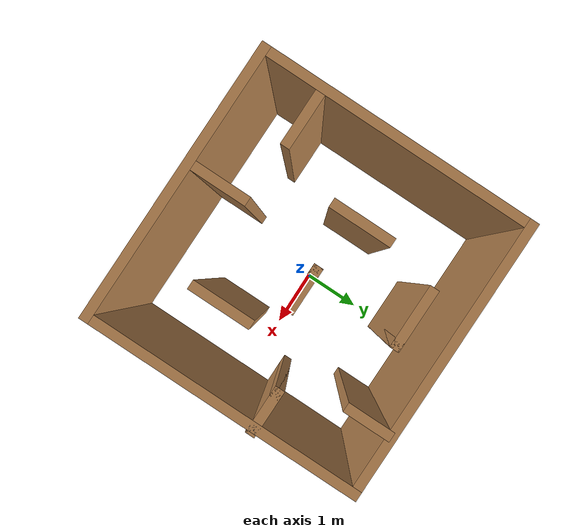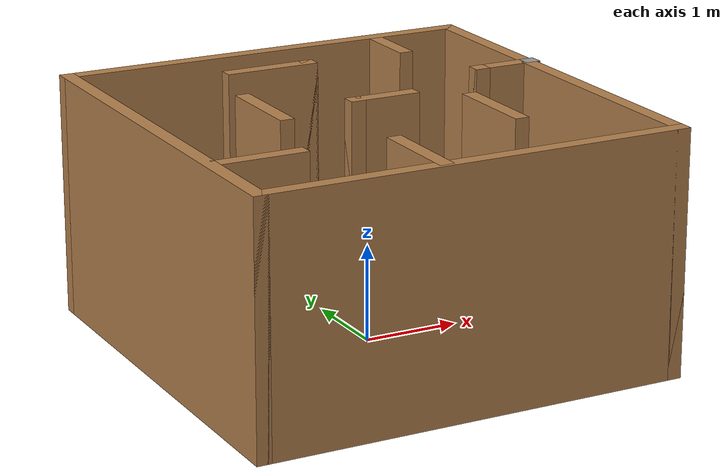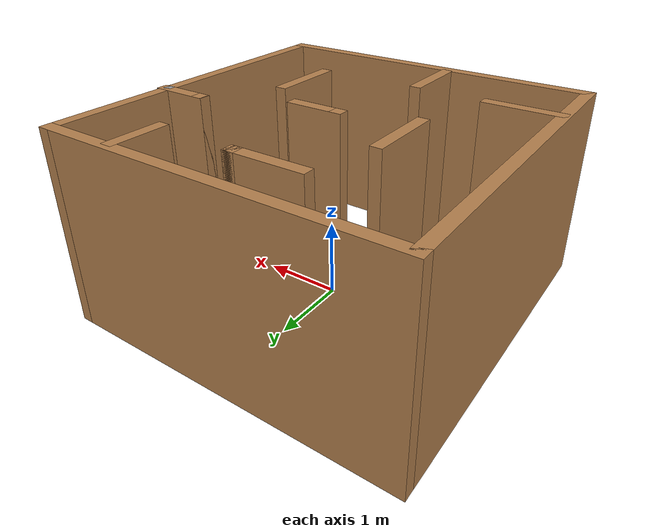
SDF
<?xml version='1.0'?>
<sdf version='1.7'>
  <model name='Small_maze'>
    <pose>-0.045 -0.045 0 0 -0 0</pose>
    <link name='Wall_0'>
      <collision name='Wall_0_Collision'>
        <geometry>
          <box>
            <size>4.5 0.15 2.5</size>
          </box>
        </geometry>
        <pose>0 0 1.25 0 -0 0</pose>
      </collision>
      <visual name='Wall_0_Visual'>
        <pose>0 0 1.25 0 -0 0</pose>
        <geometry>
          <box>
            <size>4.5 0.15 2.5</size>
          </box>
        </geometry>
        <material>
          <script>
            <uri>file://media/materials/scripts/gazebo.material</uri>
            <name>Gazebo/Wood</name>
          </script>
          <ambient>1 1 1 1</ambient>
        </material>
        <meta>
          <layer>0</layer>
        </meta>
      </visual>
      <pose>-0.02 -2.175 0 0 -0 0</pose>
    </link>
    <link name='Wall_1'>
      <collision name='Wall_1_Collision'>
        <geometry>
          <box>
            <size>4.5 0.15 2.5</size>
          </box>
        </geometry>
        <pose>0 0 1.25 0 -0 0</pose>
      </collision>
      <visual name='Wall_1_Visual'>
        <pose>0 0 1.25 0 -0 0</pose>
        <geometry>
          <box>
            <size>4.5 0.15 2.5</size>
          </box>
        </geometry>
        <material>
          <script>
            <uri>file://media/materials/scripts/gazebo.material</uri>
            <name>Gazebo/Wood</name>
          </script>
          <ambient>1 1 1 1</ambient>
        </material>
        <meta>
          <layer>0</layer>
        </meta>
      </visual>
      <pose>2.155 0 0 0 -0 1.5708</pose>
    </link>
    <link name='Wall_11'>
      <collision name='Wall_11_Collision'>
        <geometry>
          <box>
            <size>1 0.15 2.5</size>
          </box>
        </geometry>
        <pose>0 0 1.25 0 -0 0</pose>
      </collision>
      <visual name='Wall_11_Visual'>
        <pose>0 0 1.25 0 -0 0</pose>
        <geometry>
          <box>
            <size>1 0.15 2.5</size>
          </box>
        </geometry>
        <material>
          <script>
            <uri>file://media/materials/scripts/gazebo.material</uri>
            <name>Gazebo/Wood</name>
          </script>
          <ambient>1 1 1 1</ambient>
        </material>
        <meta>
          <layer>0</layer>
        </meta>
      </visual>
      <pose>-0.965 0.24 0 0 -0 1.5708</pose>
    </link>
    <link name='Wall_13'>
      <collision name='Wall_13_Collision'>
        <geometry>
          <box>
            <size>0.75 0.15 2.5</size>
          </box>
        </geometry>
        <pose>0 0 1.25 0 -0 0</pose>
      </collision>
      <visual name='Wall_13_Visual'>
        <pose>0 0 1.25 0 -0 0</pose>
        <geometry>
          <box>
            <size>0.75 0.15 2.5</size>
          </box>
        </geometry>
        <material>
          <script>
            <uri>file://media/materials/scripts/gazebo.material</uri>
            <name>Gazebo/Wood</name>
          </script>
          <ambient>1 1 1 1</ambient>
        </material>
        <meta>
          <layer>0</layer>
        </meta>
      </visual>
      <pose>0.225 0.075 0 0 -0 3.14159</pose>
    </link>
    <link name='Wall_14'>
      <collision name='Wall_14_Collision'>
        <geometry>
          <box>
            <size>0.16 0.15 2.5</size>
          </box>
        </geometry>
        <pose>0 0 1.25 0 -0 0</pose>
      </collision>
      <visual name='Wall_14_Visual'>
        <pose>0 0 1.25 0 -0 0</pose>
        <geometry>
          <box>
            <size>0.16 0.15 2.5</size>
          </box>
        </geometry>
        <material>
          <script>
            <uri>file://media/materials/scripts/gazebo.material</uri>
            <name>Gazebo/Wood</name>
          </script>
          <ambient>1 1 1 1</ambient>
        </material>
        <meta>
          <layer>0</layer>
        </meta>
      </visual>
      <pose>-0.07 0.075 0 0 -0 0</pose>
    </link>
    <link name='Wall_16'>
      <collision name='Wall_16_Collision'>
        <geometry>
          <box>
            <size>1 0.15 2.5</size>
          </box>
        </geometry>
        <pose>0 0 1.25 0 -0 0</pose>
      </collision>
      <visual name='Wall_16_Visual'>
        <pose>0 0 1.25 0 -0 0</pose>
        <geometry>
          <box>
            <size>1 0.15 2.5</size>
          </box>
        </geometry>
        <material>
          <script>
            <uri>file://media/materials/scripts/gazebo.material</uri>
            <name>Gazebo/Wood</name>
          </script>
          <ambient>1 1 1 1</ambient>
        </material>
        <meta>
          <layer>0</layer>
        </meta>
      </visual>
      <pose>-0.27 1.545 0 0 -0 0</pose>
    </link>
    <link name='Wall_17'>
      <collision name='Wall_17_Collision'>
        <geometry>
          <box>
            <size>0.15 0.15 2.5</size>
          </box>
        </geometry>
        <pose>0 0 1.25 0 -0 0</pose>
      </collision>
      <visual name='Wall_17_Visual'>
        <pose>0 0 1.25 0 -0 0</pose>
        <geometry>
          <box>
            <size>0.15 0.15 2.5</size>
          </box>
        </geometry>
        <material>
          <script>
            <uri>file://media/materials/scripts/gazebo.material</uri>
            <name>Gazebo/Wood</name>
          </script>
          <ambient>1 1 1 1</ambient>
        </material>
        <meta>
          <layer>0</layer>
        </meta>
      </visual>
      <pose>0.155 1.545 0 0 -0 0</pose>
    </link>
    <link name='Wall_19'>
      <collision name='Wall_19_Collision'>
        <geometry>
          <box>
            <size>0.75 0.15 2.5</size>
          </box>
        </geometry>
        <pose>0 0 1.25 0 -0 0</pose>
      </collision>
      <visual name='Wall_19_Visual'>
        <pose>0 0 1.25 0 -0 0</pose>
        <geometry>
          <box>
            <size>0.75 0.15 2.5</size>
          </box>
        </geometry>
        <material>
          <script>
            <uri>file://media/materials/scripts/gazebo.material</uri>
            <name>Gazebo/Wood</name>
          </script>
          <ambient>1 1 1 1</ambient>
        </material>
        <meta>
          <layer>0</layer>
        </meta>
      </visual>
      <pose>1.235 1.805 0 0 -0 1.5708</pose>
    </link>
    <link name='Wall_2'>
      <collision name='Wall_2_Collision'>
        <geometry>
          <box>
            <size>4.5 0.15 2.5</size>
          </box>
        </geometry>
        <pose>0 0 1.25 0 -0 0</pose>
      </collision>
      <visual name='Wall_2_Visual'>
        <pose>0 0 1.25 0 -0 0</pose>
        <geometry>
          <box>
            <size>4.5 0.15 2.5</size>
          </box>
        </geometry>
        <material>
          <script>
            <uri>file://media/materials/scripts/gazebo.material</uri>
            <name>Gazebo/Wood</name>
          </script>
          <ambient>1 1 1 1</ambient>
        </material>
        <meta>
          <layer>0</layer>
        </meta>
      </visual>
      <pose>-0.02 2.175 0 0 -0 3.14159</pose>
    </link>
    <link name='Wall_21'>
      <collision name='Wall_21_Collision'>
        <geometry>
          <box>
            <size>0.16 0.15 2.5</size>
          </box>
        </geometry>
        <pose>0 0 1.25 0 -0 0</pose>
      </collision>
      <visual name='Wall_21_Visual'>
        <pose>0 0 1.25 0 -0 0</pose>
        <geometry>
          <box>
            <size>0.16 0.15 2.5</size>
          </box>
        </geometry>
        <material>
          <script>
            <uri>file://media/materials/scripts/gazebo.material</uri>
            <name>Gazebo/Grey</name>
          </script>
          <ambient>1 1 1 1</ambient>
        </material>
        <meta>
          <layer>0</layer>
        </meta>
      </visual>
      <pose>2.19 0.555 0 0 -0 0</pose>
    </link>
    <link name='Wall_22'>
      <collision name='Wall_22_Collision'>
        <geometry>
          <box>
            <size>0.75 0.15 2.5</size>
          </box>
        </geometry>
        <pose>0 0 1.25 0 -0 0</pose>
      </collision>
      <visual name='Wall_22_Visual'>
        <pose>0 0 1.25 0 -0 0</pose>
        <geometry>
          <box>
            <size>0.75 0.15 2.5</size>
          </box>
        </geometry>
        <material>
          <script>
            <uri>file://media/materials/scripts/gazebo.material</uri>
            <name>Gazebo/Wood</name>
          </script>
          <ambient>1 1 1 1</ambient>
        </material>
        <meta>
          <layer>0</layer>
        </meta>
      </visual>
      <pose>1.895 0.555 0 0 -0 3.14159</pose>
    </link>
    <link name='Wall_23'>
      <collision name='Wall_23_Collision'>
        <geometry>
          <box>
            <size>0.16 0.15 2.5</size>
          </box>
        </geometry>
        <pose>0 0 1.25 0 -0 0</pose>
      </collision>
      <visual name='Wall_23_Visual'>
        <pose>0 0 1.25 0 -0 0</pose>
        <geometry>
          <box>
            <size>0.16 0.15 2.5</size>
          </box>
        </geometry>
        <material>
          <script>
            <uri>file://media/materials/scripts/gazebo.material</uri>
            <name>Gazebo/Wood</name>
          </script>
          <ambient>1 1 1 1</ambient>
        </material>
        <meta>
          <layer>0</layer>
        </meta>
      </visual>
      <pose>1.6 0.555 0 0 -0 0</pose>
    </link>
    <link name='Wall_3'>
      <collision name='Wall_3_Collision'>
        <geometry>
          <box>
            <size>4.5 0.15 2.5</size>
          </box>
        </geometry>
        <pose>0 0 1.25 0 -0 0</pose>
      </collision>
      <visual name='Wall_3_Visual'>
        <pose>0 0 1.25 0 -0 0</pose>
        <geometry>
          <box>
            <size>4.5 0.15 2.5</size>
          </box>
        </geometry>
        <material>
          <script>
            <uri>file://media/materials/scripts/gazebo.material</uri>
            <name>Gazebo/Wood</name>
          </script>
          <ambient>1 1 1 1</ambient>
        </material>
        <meta>
          <layer>0</layer>
        </meta>
      </visual>
      <pose>-2.195 0 0 0 -0 -1.5708</pose>
    </link>
    <link name='Wall_5'>
      <collision name='Wall_5_Collision'>
        <geometry>
          <box>
            <size>1 0.15 2.5</size>
          </box>
        </geometry>
        <pose>0 0 1.25 0 -0 0</pose>
      </collision>
      <visual name='Wall_5_Visual'>
        <pose>0 0 1.25 0 -0 0</pose>
        <geometry>
          <box>
            <size>1 0.15 2.5</size>
          </box>
        </geometry>
        <material>
          <script>
            <uri>file://media/materials/scripts/gazebo.material</uri>
            <name>Gazebo/Wood</name>
          </script>
          <ambient>1 1 1 1</ambient>
        </material>
        <meta>
          <layer>0</layer>
        </meta>
      </visual>
      <pose>-1.74 -1.205 0 0 -0 0</pose>
    </link>
    <link name='Wall_7'>
      <collision name='Wall_7_Collision'>
        <geometry>
          <box>
            <size>1 0.15 2.5</size>
          </box>
        </geometry>
        <pose>0 0 1.25 0 -0 0</pose>
      </collision>
      <visual name='Wall_7_Visual'>
        <pose>0 0 1.25 0 -0 0</pose>
        <geometry>
          <box>
            <size>1 0.15 2.5</size>
          </box>
        </geometry>
        <material>
          <script>
            <uri>file://media/materials/scripts/gazebo.material</uri>
            <name>Gazebo/Wood</name>
          </script>
          <ambient>1 1 1 1</ambient>
        </material>
        <meta>
          <layer>0</layer>
        </meta>
      </visual>
      <pose>-0.345 -1.71 0 0 -0 1.5708</pose>
    </link>
    <link name='Wall_9'>
      <collision name='Wall_9_Collision'>
        <geometry>
          <box>
            <size>1 0.15 2.5</size>
          </box>
        </geometry>
        <pose>0 0 1.25 0 -0 0</pose>
      </collision>
      <visual name='Wall_9_Visual'>
        <pose>0 0 1.25 0 -0 0</pose>
        <geometry>
          <box>
            <size>1 0.15 2.5</size>
          </box>
        </geometry>
        <material>
          <script>
            <uri>file://media/materials/scripts/gazebo.material</uri>
            <name>Gazebo/Wood</name>
          </script>
          <ambient>1 1 1 1</ambient>
        </material>
        <meta>
          <layer>0</layer>
        </meta>
      </visual>
      <pose>1.015 -0.74 0 0 -0 -1.5708</pose>
    </link>
    <static>1</static>
  </model>
</sdf>
